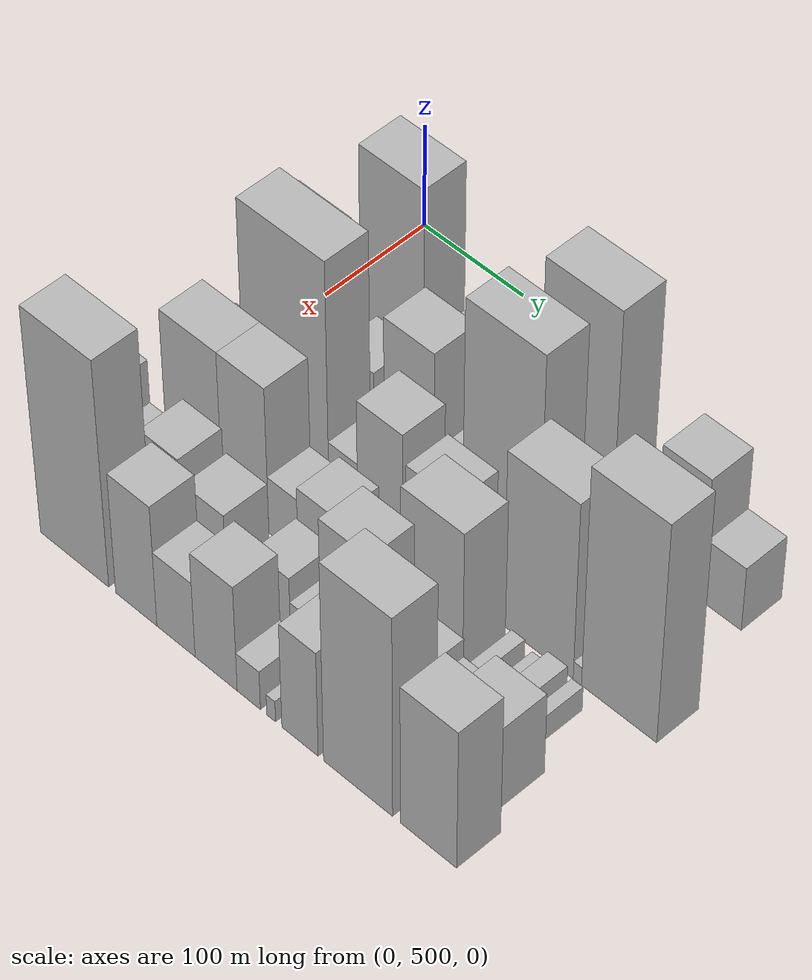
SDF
<sdf version="1.6">
 <world name="default">
  <model name="building_40">
   <static>1</static>
   <pose>100.0000 539.4473 0 0.000000 0.000000 0.000000</pose>
   <link name="link">
    <pose>0 0 25.50 0 0 0</pose>
    <collision name="collision"><geometry><box><size>40.0000 26.0697 51.0000</size></box></geometry></collision>
    <visual name="visual">
     <cast_shadows>0</cast_shadows>
     <geometry><box><size>40.0000 26.0697 51.0000</size></box></geometry>
     <material>
      <script>
       <uri>model://HANNAS_wall/materials/scripts</uri>
       <uri>model://HANNAS_wall/materials/textures</uri>
       <name>vrc/HANNAS_wall</name>
      </script>
     </material>
    </visual>
   </link>
  </model>
  <model name="building_41">
   <static>1</static>
   <pose>100.0000 587.9083 0 0.000000 0.000000 0.000000</pose>
   <link name="link">
    <pose>0 0 100.50 0 0 0</pose>
    <collision name="collision"><geometry><box><size>40.0000 62.8523 201.0000</size></box></geometry></collision>
    <visual name="visual">
     <cast_shadows>0</cast_shadows>
     <geometry><box><size>40.0000 62.8523 201.0000</size></box></geometry>
     <material>
      <script>
       <uri>model://HANNAS_wall/materials/scripts</uri>
       <uri>model://HANNAS_wall/materials/textures</uri>
       <name>vrc/HANNAS_wall</name>
      </script>
     </material>
    </visual>
   </link>
  </model>
  <model name="building_42">
   <static>1</static>
   <pose>100.0000 635.7415 0 0.000000 0.000000 0.000000</pose>
   <link name="link">
    <pose>0 0 28.50 0 0 0</pose>
    <collision name="collision"><geometry><box><size>40.0000 32.8142 57.0000</size></box></geometry></collision>
    <visual name="visual">
     <cast_shadows>0</cast_shadows>
     <geometry><box><size>40.0000 32.8142 57.0000</size></box></geometry>
     <material>
      <script>
       <uri>model://HANNAS_wall/materials/scripts</uri>
       <uri>model://HANNAS_wall/materials/textures</uri>
       <name>vrc/HANNAS_wall</name>
      </script>
     </material>
    </visual>
   </link>
  </model>
  <model name="building_43">
   <static>1</static>
   <pose>100.0000 674.3793 0 0.000000 0.000000 0.000000</pose>
   <link name="link">
    <pose>0 0 24.00 0 0 0</pose>
    <collision name="collision"><geometry><box><size>40.0000 24.4614 48.0000</size></box></geometry></collision>
    <visual name="visual">
     <cast_shadows>0</cast_shadows>
     <geometry><box><size>40.0000 24.4614 48.0000</size></box></geometry>
     <material>
      <script>
       <uri>model://HANNAS_wall/materials/scripts</uri>
       <uri>model://HANNAS_wall/materials/textures</uri>
       <name>vrc/HANNAS_wall</name>
      </script>
     </material>
    </visual>
   </link>
  </model>
  <model name="building_44">
   <static>1</static>
   <pose>100.0000 709.1894 0 0.000000 0.000000 0.000000</pose>
   <link name="link">
    <pose>0 0 64.50 0 0 0</pose>
    <collision name="collision"><geometry><box><size>40.0000 45.1586 129.0000</size></box></geometry></collision>
    <visual name="visual">
     <cast_shadows>0</cast_shadows>
     <geometry><box><size>40.0000 45.1586 129.0000</size></box></geometry>
     <material>
      <script>
       <uri>model://HANNAS_wall/materials/scripts</uri>
       <uri>model://HANNAS_wall/materials/textures</uri>
       <name>vrc/HANNAS_wall</name>
      </script>
     </material>
    </visual>
   </link>
  </model>
  <model name="building_45">
   <static>1</static>
   <pose>100.0000 766.7469 0 0.000000 0.000000 0.000000</pose>
   <link name="link">
    <pose>0 0 109.50 0 0 0</pose>
    <collision name="collision"><geometry><box><size>40.0000 69.9564 219.0000</size></box></geometry></collision>
    <visual name="visual">
     <cast_shadows>0</cast_shadows>
     <geometry><box><size>40.0000 69.9564 219.0000</size></box></geometry>
     <material>
      <script>
       <uri>model://HANNAS_wall/materials/scripts</uri>
       <uri>model://HANNAS_wall/materials/textures</uri>
       <name>vrc/HANNAS_wall</name>
      </script>
     </material>
    </visual>
   </link>
  </model>
  <model name="building_46">
   <static>1</static>
   <pose>100.0000 806.9634 0 0.000000 0.000000 0.000000</pose>
   <link name="link">
    <pose>0 0 10.50 0 0 0</pose>
    <collision name="collision"><geometry><box><size>40.0000 10.4767 21.0000</size></box></geometry></collision>
    <visual name="visual">
     <cast_shadows>0</cast_shadows>
     <geometry><box><size>40.0000 10.4767 21.0000</size></box></geometry>
     <material>
      <script>
       <uri>model://HANNAS_wall/materials/scripts</uri>
       <uri>model://HANNAS_wall/materials/textures</uri>
       <name>vrc/HANNAS_wall</name>
      </script>
     </material>
    </visual>
   </link>
  </model>
  <model name="building_47">
   <static>1</static>
   <pose>100.0000 825.6663 0 0.000000 0.000000 0.000000</pose>
   <link name="link">
    <pose>0 0 16.50 0 0 0</pose>
    <collision name="collision"><geometry><box><size>40.0000 16.9291 33.0000</size></box></geometry></collision>
    <visual name="visual">
     <cast_shadows>0</cast_shadows>
     <geometry><box><size>40.0000 16.9291 33.0000</size></box></geometry>
     <material>
      <script>
       <uri>model://HANNAS_wall/materials/scripts</uri>
       <uri>model://HANNAS_wall/materials/textures</uri>
       <name>vrc/HANNAS_wall</name>
      </script>
     </material>
    </visual>
   </link>
  </model>
  <model name="building_48">
   <static>1</static>
   <pose>100.0000 863.9325 0 0.000000 0.000000 0.000000</pose>
   <link name="link">
    <pose>0 0 61.50 0 0 0</pose>
    <collision name="collision"><geometry><box><size>40.0000 43.6032 123.0000</size></box></geometry></collision>
    <visual name="visual">
     <cast_shadows>0</cast_shadows>
     <geometry><box><size>40.0000 43.6032 123.0000</size></box></geometry>
     <material>
      <script>
       <uri>model://HANNAS_wall/materials/scripts</uri>
       <uri>model://HANNAS_wall/materials/textures</uri>
       <name>vrc/HANNAS_wall</name>
      </script>
     </material>
    </visual>
   </link>
  </model>
  <model name="building_49">
   <static>1</static>
   <pose>100.0000 903.2108 0 0.000000 0.000000 0.000000</pose>
   <link name="link">
    <pose>0 0 31.50 0 0 0</pose>
    <collision name="collision"><geometry><box><size>40.0000 34.9535 63.0000</size></box></geometry></collision>
    <visual name="visual">
     <cast_shadows>0</cast_shadows>
     <geometry><box><size>40.0000 34.9535 63.0000</size></box></geometry>
     <material>
      <script>
       <uri>model://HANNAS_wall/materials/scripts</uri>
       <uri>model://HANNAS_wall/materials/textures</uri>
       <name>vrc/HANNAS_wall</name>
      </script>
     </material>
    </visual>
   </link>
  </model>
  <model name="building_93">
   <static>1</static>
   <pose>155.0000 538.5854 0 0.000000 0.000000 0.000000</pose>
   <link name="link">
    <pose>0 0 73.50 0 0 0</pose>
    <collision name="collision"><geometry><box><size>40.0000 51.8545 147.0000</size></box></geometry></collision>
    <visual name="visual">
     <cast_shadows>0</cast_shadows>
     <geometry><box><size>40.0000 51.8545 147.0000</size></box></geometry>
     <material>
      <script>
       <uri>model://HANNAS_wall/materials/scripts</uri>
       <uri>model://HANNAS_wall/materials/textures</uri>
       <name>vrc/HANNAS_wall</name>
      </script>
     </material>
    </visual>
   </link>
  </model>
  <model name="building_94">
   <static>1</static>
   <pose>155.0000 580.1329 0 0.000000 0.000000 0.000000</pose>
   <link name="link">
    <pose>0 0 16.50 0 0 0</pose>
    <collision name="collision"><geometry><box><size>40.0000 17.2406 33.0000</size></box></geometry></collision>
    <visual name="visual">
     <cast_shadows>0</cast_shadows>
     <geometry><box><size>40.0000 17.2406 33.0000</size></box></geometry>
     <material>
      <script>
       <uri>model://HANNAS_wall/materials/scripts</uri>
       <uri>model://HANNAS_wall/materials/textures</uri>
       <name>vrc/HANNAS_wall</name>
      </script>
     </material>
    </visual>
   </link>
  </model>
  <model name="building_95">
   <static>1</static>
   <pose>155.0000 607.4577 0 0.000000 0.000000 0.000000</pose>
   <link name="link">
    <pose>0 0 34.50 0 0 0</pose>
    <collision name="collision"><geometry><box><size>40.0000 37.4090 69.0000</size></box></geometry></collision>
    <visual name="visual">
     <cast_shadows>0</cast_shadows>
     <geometry><box><size>40.0000 37.4090 69.0000</size></box></geometry>
     <material>
      <script>
       <uri>model://HANNAS_wall/materials/scripts</uri>
       <uri>model://HANNAS_wall/materials/textures</uri>
       <name>vrc/HANNAS_wall</name>
      </script>
     </material>
    </visual>
   </link>
  </model>
  <model name="building_96">
   <static>1</static>
   <pose>155.0000 660.4291 0 0.000000 0.000000 0.000000</pose>
   <link name="link">
    <pose>0 0 66.00 0 0 0</pose>
    <collision name="collision"><geometry><box><size>40.0000 48.5338 132.0000</size></box></geometry></collision>
    <visual name="visual">
     <cast_shadows>0</cast_shadows>
     <geometry><box><size>40.0000 48.5338 132.0000</size></box></geometry>
     <material>
      <script>
       <uri>model://HANNAS_wall/materials/scripts</uri>
       <uri>model://HANNAS_wall/materials/textures</uri>
       <name>vrc/HANNAS_wall</name>
      </script>
     </material>
    </visual>
   </link>
  </model>
  <model name="building_97">
   <static>1</static>
   <pose>155.0000 694.7762 0 0.000000 0.000000 0.000000</pose>
   <link name="link">
    <pose>0 0 18.00 0 0 0</pose>
    <collision name="collision"><geometry><box><size>40.0000 20.1604 36.0000</size></box></geometry></collision>
    <visual name="visual">
     <cast_shadows>0</cast_shadows>
     <geometry><box><size>40.0000 20.1604 36.0000</size></box></geometry>
     <material>
      <script>
       <uri>model://HANNAS_wall/materials/scripts</uri>
       <uri>model://HANNAS_wall/materials/textures</uri>
       <name>vrc/HANNAS_wall</name>
      </script>
     </material>
    </visual>
   </link>
  </model>
  <model name="building_98">
   <static>1</static>
   <pose>155.0000 749.5953 0 0.000000 0.000000 0.000000</pose>
   <link name="link">
    <pose>0 0 103.50 0 0 0</pose>
    <collision name="collision"><geometry><box><size>40.0000 73.4780 207.0000</size></box></geometry></collision>
    <visual name="visual">
     <cast_shadows>0</cast_shadows>
     <geometry><box><size>40.0000 73.4780 207.0000</size></box></geometry>
     <material>
      <script>
       <uri>model://HANNAS_wall/materials/scripts</uri>
       <uri>model://HANNAS_wall/materials/textures</uri>
       <name>vrc/HANNAS_wall</name>
      </script>
     </material>
    </visual>
   </link>
  </model>
  <model name="building_99">
   <static>1</static>
   <pose>155.0000 808.7699 0 0.000000 0.000000 0.000000</pose>
   <link name="link">
    <pose>0 0 37.50 0 0 0</pose>
    <collision name="collision"><geometry><box><size>40.0000 44.8712 75.0000</size></box></geometry></collision>
    <visual name="visual">
     <cast_shadows>0</cast_shadows>
     <geometry><box><size>40.0000 44.8712 75.0000</size></box></geometry>
     <material>
      <script>
       <uri>model://HANNAS_wall/materials/scripts</uri>
       <uri>model://HANNAS_wall/materials/textures</uri>
       <name>vrc/HANNAS_wall</name>
      </script>
     </material>
    </visual>
   </link>
  </model>
  <model name="building_100">
   <static>1</static>
   <pose>155.0000 847.4968 0 0.000000 0.000000 0.000000</pose>
   <link name="link">
    <pose>0 0 31.50 0 0 0</pose>
    <collision name="collision"><geometry><box><size>40.0000 32.5827 63.0000</size></box></geometry></collision>
    <visual name="visual">
     <cast_shadows>0</cast_shadows>
     <geometry><box><size>40.0000 32.5827 63.0000</size></box></geometry>
     <material>
      <script>
       <uri>model://HANNAS_wall/materials/scripts</uri>
       <uri>model://HANNAS_wall/materials/textures</uri>
       <name>vrc/HANNAS_wall</name>
      </script>
     </material>
    </visual>
   </link>
  </model>
  <model name="building_101">
   <static>1</static>
   <pose>155.0000 881.0749 0 0.000000 0.000000 0.000000</pose>
   <link name="link">
    <pose>0 0 31.50 0 0 0</pose>
    <collision name="collision"><geometry><box><size>40.0000 34.5735 63.0000</size></box></geometry></collision>
    <visual name="visual">
     <cast_shadows>0</cast_shadows>
     <geometry><box><size>40.0000 34.5735 63.0000</size></box></geometry>
     <material>
      <script>
       <uri>model://HANNAS_wall/materials/scripts</uri>
       <uri>model://HANNAS_wall/materials/textures</uri>
       <name>vrc/HANNAS_wall</name>
      </script>
     </material>
    </visual>
   </link>
  </model>
  <model name="building_148">
   <static>1</static>
   <pose>210.0000 520.5833 0 0.000000 0.000000 0.000000</pose>
   <link name="link">
    <pose>0 0 30.00 0 0 0</pose>
    <collision name="collision"><geometry><box><size>40.0000 32.2908 60.0000</size></box></geometry></collision>
    <visual name="visual">
     <cast_shadows>0</cast_shadows>
     <geometry><box><size>40.0000 32.2908 60.0000</size></box></geometry>
     <material>
      <script>
       <uri>model://HANNAS_wall/materials/scripts</uri>
       <uri>model://HANNAS_wall/materials/textures</uri>
       <name>vrc/HANNAS_wall</name>
      </script>
     </material>
    </visual>
   </link>
  </model>
  <model name="building_149">
   <static>1</static>
   <pose>210.0000 542.2951 0 0.000000 0.000000 0.000000</pose>
   <link name="link">
    <pose>0 0 13.50 0 0 0</pose>
    <collision name="collision"><geometry><box><size>40.0000 11.1329 27.0000</size></box></geometry></collision>
    <visual name="visual">
     <cast_shadows>0</cast_shadows>
     <geometry><box><size>40.0000 11.1329 27.0000</size></box></geometry>
     <material>
      <script>
       <uri>model://HANNAS_wall/materials/scripts</uri>
       <uri>model://HANNAS_wall/materials/textures</uri>
       <name>vrc/HANNAS_wall</name>
      </script>
     </material>
    </visual>
   </link>
  </model>
  <model name="building_150">
   <static>1</static>
   <pose>210.0000 595.9056 0 0.000000 0.000000 0.000000</pose>
   <link name="link">
    <pose>0 0 112.50 0 0 0</pose>
    <collision name="collision"><geometry><box><size>40.0000 84.0880 225.0000</size></box></geometry></collision>
    <visual name="visual">
     <cast_shadows>0</cast_shadows>
     <geometry><box><size>40.0000 84.0880 225.0000</size></box></geometry>
     <material>
      <script>
       <uri>model://HANNAS_wall/materials/scripts</uri>
       <uri>model://HANNAS_wall/materials/textures</uri>
       <name>vrc/HANNAS_wall</name>
      </script>
     </material>
    </visual>
   </link>
  </model>
  <model name="building_151">
   <static>1</static>
   <pose>210.0000 652.1038 0 0.000000 0.000000 0.000000</pose>
   <link name="link">
    <pose>0 0 25.50 0 0 0</pose>
    <collision name="collision"><geometry><box><size>40.0000 28.3084 51.0000</size></box></geometry></collision>
    <visual name="visual">
     <cast_shadows>0</cast_shadows>
     <geometry><box><size>40.0000 28.3084 51.0000</size></box></geometry>
     <material>
      <script>
       <uri>model://HANNAS_wall/materials/scripts</uri>
       <uri>model://HANNAS_wall/materials/textures</uri>
       <name>vrc/HANNAS_wall</name>
      </script>
     </material>
    </visual>
   </link>
  </model>
  <model name="building_152">
   <static>1</static>
   <pose>210.0000 688.2054 0 0.000000 0.000000 0.000000</pose>
   <link name="link">
    <pose>0 0 57.00 0 0 0</pose>
    <collision name="collision"><geometry><box><size>40.0000 43.8949 114.0000</size></box></geometry></collision>
    <visual name="visual">
     <cast_shadows>0</cast_shadows>
     <geometry><box><size>40.0000 43.8949 114.0000</size></box></geometry>
     <material>
      <script>
       <uri>model://HANNAS_wall/materials/scripts</uri>
       <uri>model://HANNAS_wall/materials/textures</uri>
       <name>vrc/HANNAS_wall</name>
      </script>
     </material>
    </visual>
   </link>
  </model>
  <model name="building_153">
   <static>1</static>
   <pose>210.0000 736.5935 0 0.000000 0.000000 0.000000</pose>
   <link name="link">
    <pose>0 0 43.50 0 0 0</pose>
    <collision name="collision"><geometry><box><size>40.0000 46.8813 87.0000</size></box></geometry></collision>
    <visual name="visual">
     <cast_shadows>0</cast_shadows>
     <geometry><box><size>40.0000 46.8813 87.0000</size></box></geometry>
     <material>
      <script>
       <uri>model://HANNAS_wall/materials/scripts</uri>
       <uri>model://HANNAS_wall/materials/textures</uri>
       <name>vrc/HANNAS_wall</name>
      </script>
     </material>
    </visual>
   </link>
  </model>
  <model name="building_154">
   <static>1</static>
   <pose>210.0000 767.6659 0 0.000000 0.000000 0.000000</pose>
   <link name="link">
    <pose>0 0 15.00 0 0 0</pose>
    <collision name="collision"><geometry><box><size>40.0000 15.2633 30.0000</size></box></geometry></collision>
    <visual name="visual">
     <cast_shadows>0</cast_shadows>
     <geometry><box><size>40.0000 15.2633 30.0000</size></box></geometry>
     <material>
      <script>
       <uri>model://HANNAS_wall/materials/scripts</uri>
       <uri>model://HANNAS_wall/materials/textures</uri>
       <name>vrc/HANNAS_wall</name>
      </script>
     </material>
    </visual>
   </link>
  </model>
  <model name="building_155">
   <static>1</static>
   <pose>210.0000 787.2760 0 0.000000 0.000000 0.000000</pose>
   <link name="link">
    <pose>0 0 22.50 0 0 0</pose>
    <collision name="collision"><geometry><box><size>40.0000 23.9570 45.0000</size></box></geometry></collision>
    <visual name="visual">
     <cast_shadows>0</cast_shadows>
     <geometry><box><size>40.0000 23.9570 45.0000</size></box></geometry>
     <material>
      <script>
       <uri>model://HANNAS_wall/materials/scripts</uri>
       <uri>model://HANNAS_wall/materials/textures</uri>
       <name>vrc/HANNAS_wall</name>
      </script>
     </material>
    </visual>
   </link>
  </model>
  <model name="building_156">
   <static>1</static>
   <pose>210.0000 802.5855 0 0.000000 0.000000 0.000000</pose>
   <link name="link">
    <pose>0 0 7.50 0 0 0</pose>
    <collision name="collision"><geometry><box><size>40.0000 6.6619 15.0000</size></box></geometry></collision>
    <visual name="visual">
     <cast_shadows>0</cast_shadows>
     <geometry><box><size>40.0000 6.6619 15.0000</size></box></geometry>
     <material>
      <script>
       <uri>model://HANNAS_wall/materials/scripts</uri>
       <uri>model://HANNAS_wall/materials/textures</uri>
       <name>vrc/HANNAS_wall</name>
      </script>
     </material>
    </visual>
   </link>
  </model>
  <model name="building_157">
   <static>1</static>
   <pose>210.0000 838.2510 0 0.000000 0.000000 0.000000</pose>
   <link name="link">
    <pose>0 0 87.00 0 0 0</pose>
    <collision name="collision"><geometry><box><size>40.0000 64.6691 174.0000</size></box></geometry></collision>
    <visual name="visual">
     <cast_shadows>0</cast_shadows>
     <geometry><box><size>40.0000 64.6691 174.0000</size></box></geometry>
     <material>
      <script>
       <uri>model://HANNAS_wall/materials/scripts</uri>
       <uri>model://HANNAS_wall/materials/textures</uri>
       <name>vrc/HANNAS_wall</name>
      </script>
     </material>
    </visual>
   </link>
  </model>
  <model name="building_158">
   <static>1</static>
   <pose>210.0000 874.3896 0 0.000000 0.000000 0.000000</pose>
   <link name="link">
    <pose>0 0 9.00 0 0 0</pose>
    <collision name="collision"><geometry><box><size>40.0000 7.6081 18.0000</size></box></geometry></collision>
    <visual name="visual">
     <cast_shadows>0</cast_shadows>
     <geometry><box><size>40.0000 7.6081 18.0000</size></box></geometry>
     <material>
      <script>
       <uri>model://HANNAS_wall/materials/scripts</uri>
       <uri>model://HANNAS_wall/materials/textures</uri>
       <name>vrc/HANNAS_wall</name>
      </script>
     </material>
    </visual>
   </link>
  </model>
  <model name="building_159">
   <static>1</static>
   <pose>210.0000 912.2705 0 0.000000 0.000000 0.000000</pose>
   <link name="link">
    <pose>0 0 108.00 0 0 0</pose>
    <collision name="collision"><geometry><box><size>40.0000 68.1538 216.0000</size></box></geometry></collision>
    <visual name="visual">
     <cast_shadows>0</cast_shadows>
     <geometry><box><size>40.0000 68.1538 216.0000</size></box></geometry>
     <material>
      <script>
       <uri>model://HANNAS_wall/materials/scripts</uri>
       <uri>model://HANNAS_wall/materials/textures</uri>
       <name>vrc/HANNAS_wall</name>
      </script>
     </material>
    </visual>
   </link>
  </model>
  <model name="building_199">
   <static>1</static>
   <pose>265.0000 561.7441 0 0.000000 0.000000 0.000000</pose>
   <link name="link">
    <pose>0 0 72.00 0 0 0</pose>
    <collision name="collision"><geometry><box><size>40.0000 56.0996 144.0000</size></box></geometry></collision>
    <visual name="visual">
     <cast_shadows>0</cast_shadows>
     <geometry><box><size>40.0000 56.0996 144.0000</size></box></geometry>
     <material>
      <script>
       <uri>model://HANNAS_wall/materials/scripts</uri>
       <uri>model://HANNAS_wall/materials/textures</uri>
       <name>vrc/HANNAS_wall</name>
      </script>
     </material>
    </visual>
   </link>
  </model>
  <model name="building_200">
   <static>1</static>
   <pose>265.0000 612.9077 0 0.000000 0.000000 0.000000</pose>
   <link name="link">
    <pose>0 0 72.00 0 0 0</pose>
    <collision name="collision"><geometry><box><size>40.0000 46.2276 144.0000</size></box></geometry></collision>
    <visual name="visual">
     <cast_shadows>0</cast_shadows>
     <geometry><box><size>40.0000 46.2276 144.0000</size></box></geometry>
     <material>
      <script>
       <uri>model://HANNAS_wall/materials/scripts</uri>
       <uri>model://HANNAS_wall/materials/textures</uri>
       <name>vrc/HANNAS_wall</name>
      </script>
     </material>
    </visual>
   </link>
  </model>
  <model name="building_201">
   <static>1</static>
   <pose>265.0000 650.3772 0 0.000000 0.000000 0.000000</pose>
   <link name="link">
    <pose>0 0 28.50 0 0 0</pose>
    <collision name="collision"><geometry><box><size>40.0000 28.7114 57.0000</size></box></geometry></collision>
    <visual name="visual">
     <cast_shadows>0</cast_shadows>
     <geometry><box><size>40.0000 28.7114 57.0000</size></box></geometry>
     <material>
      <script>
       <uri>model://HANNAS_wall/materials/scripts</uri>
       <uri>model://HANNAS_wall/materials/textures</uri>
       <name>vrc/HANNAS_wall</name>
      </script>
     </material>
    </visual>
   </link>
  </model>
  <model name="building_202">
   <static>1</static>
   <pose>265.0000 683.8206 0 0.000000 0.000000 0.000000</pose>
   <link name="link">
    <pose>0 0 34.50 0 0 0</pose>
    <collision name="collision"><geometry><box><size>40.0000 38.1755 69.0000</size></box></geometry></collision>
    <visual name="visual">
     <cast_shadows>0</cast_shadows>
     <geometry><box><size>40.0000 38.1755 69.0000</size></box></geometry>
     <material>
      <script>
       <uri>model://HANNAS_wall/materials/scripts</uri>
       <uri>model://HANNAS_wall/materials/textures</uri>
       <name>vrc/HANNAS_wall</name>
      </script>
     </material>
    </visual>
   </link>
  </model>
  <model name="building_203">
   <static>1</static>
   <pose>265.0000 716.7734 0 0.000000 0.000000 0.000000</pose>
   <link name="link">
    <pose>0 0 19.50 0 0 0</pose>
    <collision name="collision"><geometry><box><size>40.0000 21.7302 39.0000</size></box></geometry></collision>
    <visual name="visual">
     <cast_shadows>0</cast_shadows>
     <geometry><box><size>40.0000 21.7302 39.0000</size></box></geometry>
     <material>
      <script>
       <uri>model://HANNAS_wall/materials/scripts</uri>
       <uri>model://HANNAS_wall/materials/textures</uri>
       <name>vrc/HANNAS_wall</name>
      </script>
     </material>
    </visual>
   </link>
  </model>
  <model name="building_204">
   <static>1</static>
   <pose>265.0000 745.8704 0 0.000000 0.000000 0.000000</pose>
   <link name="link">
    <pose>0 0 31.50 0 0 0</pose>
    <collision name="collision"><geometry><box><size>40.0000 36.4638 63.0000</size></box></geometry></collision>
    <visual name="visual">
     <cast_shadows>0</cast_shadows>
     <geometry><box><size>40.0000 36.4638 63.0000</size></box></geometry>
     <material>
      <script>
       <uri>model://HANNAS_wall/materials/scripts</uri>
       <uri>model://HANNAS_wall/materials/textures</uri>
       <name>vrc/HANNAS_wall</name>
      </script>
     </material>
    </visual>
   </link>
  </model>
  <model name="building_205">
   <static>1</static>
   <pose>265.0000 793.0254 0 0.000000 0.000000 0.000000</pose>
   <link name="link">
    <pose>0 0 75.00 0 0 0</pose>
    <collision name="collision"><geometry><box><size>40.0000 57.8461 150.0000</size></box></geometry></collision>
    <visual name="visual">
     <cast_shadows>0</cast_shadows>
     <geometry><box><size>40.0000 57.8461 150.0000</size></box></geometry>
     <material>
      <script>
       <uri>model://HANNAS_wall/materials/scripts</uri>
       <uri>model://HANNAS_wall/materials/textures</uri>
       <name>vrc/HANNAS_wall</name>
      </script>
     </material>
    </visual>
   </link>
  </model>
  <model name="building_206">
   <static>1</static>
   <pose>265.0000 833.9772 0 0.000000 0.000000 0.000000</pose>
   <link name="link">
    <pose>0 0 13.50 0 0 0</pose>
    <collision name="collision"><geometry><box><size>40.0000 12.0575 27.0000</size></box></geometry></collision>
    <visual name="visual">
     <cast_shadows>0</cast_shadows>
     <geometry><box><size>40.0000 12.0575 27.0000</size></box></geometry>
     <material>
      <script>
       <uri>model://HANNAS_wall/materials/scripts</uri>
       <uri>model://HANNAS_wall/materials/textures</uri>
       <name>vrc/HANNAS_wall</name>
      </script>
     </material>
    </visual>
   </link>
  </model>
  <model name="building_207">
   <static>1</static>
   <pose>265.0000 851.9520 0 0.000000 0.000000 0.000000</pose>
   <link name="link">
    <pose>0 0 10.50 0 0 0</pose>
    <collision name="collision"><geometry><box><size>40.0000 9.8922 21.0000</size></box></geometry></collision>
    <visual name="visual">
     <cast_shadows>0</cast_shadows>
     <geometry><box><size>40.0000 9.8922 21.0000</size></box></geometry>
     <material>
      <script>
       <uri>model://HANNAS_wall/materials/scripts</uri>
       <uri>model://HANNAS_wall/materials/textures</uri>
       <name>vrc/HANNAS_wall</name>
      </script>
     </material>
    </visual>
   </link>
  </model>
  <model name="building_208">
   <static>1</static>
   <pose>265.0000 869.8937 0 0.000000 0.000000 0.000000</pose>
   <link name="link">
    <pose>0 0 16.50 0 0 0</pose>
    <collision name="collision"><geometry><box><size>40.0000 17.9912 33.0000</size></box></geometry></collision>
    <visual name="visual">
     <cast_shadows>0</cast_shadows>
     <geometry><box><size>40.0000 17.9912 33.0000</size></box></geometry>
     <material>
      <script>
       <uri>model://HANNAS_wall/materials/scripts</uri>
       <uri>model://HANNAS_wall/materials/textures</uri>
       <name>vrc/HANNAS_wall</name>
      </script>
     </material>
    </visual>
   </link>
  </model>
  <model name="building_209">
   <static>1</static>
   <pose>265.0000 888.0436 0 0.000000 0.000000 0.000000</pose>
   <link name="link">
    <pose>0 0 12.00 0 0 0</pose>
    <collision name="collision"><geometry><box><size>40.0000 10.3086 24.0000</size></box></geometry></collision>
    <visual name="visual">
     <cast_shadows>0</cast_shadows>
     <geometry><box><size>40.0000 10.3086 24.0000</size></box></geometry>
     <material>
      <script>
       <uri>model://HANNAS_wall/materials/scripts</uri>
       <uri>model://HANNAS_wall/materials/textures</uri>
       <name>vrc/HANNAS_wall</name>
      </script>
     </material>
    </visual>
   </link>
  </model>
  <model name="building_251">
   <static>1</static>
   <pose>320.0000 516.1049 0 0.000000 0.000000 0.000000</pose>
   <link name="link">
    <pose>0 0 54.00 0 0 0</pose>
    <collision name="collision"><geometry><box><size>40.0000 40.8188 108.0000</size></box></geometry></collision>
    <visual name="visual">
     <cast_shadows>0</cast_shadows>
     <geometry><box><size>40.0000 40.8188 108.0000</size></box></geometry>
     <material>
      <script>
       <uri>model://HANNAS_wall/materials/scripts</uri>
       <uri>model://HANNAS_wall/materials/textures</uri>
       <name>vrc/HANNAS_wall</name>
      </script>
     </material>
    </visual>
   </link>
  </model>
  <model name="building_252">
   <static>1</static>
   <pose>320.0000 553.8404 0 0.000000 0.000000 0.000000</pose>
   <link name="link">
    <pose>0 0 33.00 0 0 0</pose>
    <collision name="collision"><geometry><box><size>40.0000 34.6521 66.0000</size></box></geometry></collision>
    <visual name="visual">
     <cast_shadows>0</cast_shadows>
     <geometry><box><size>40.0000 34.6521 66.0000</size></box></geometry>
     <material>
      <script>
       <uri>model://HANNAS_wall/materials/scripts</uri>
       <uri>model://HANNAS_wall/materials/textures</uri>
       <name>vrc/HANNAS_wall</name>
      </script>
     </material>
    </visual>
   </link>
  </model>
  <model name="building_253">
   <static>1</static>
   <pose>320.0000 590.1971 0 0.000000 0.000000 0.000000</pose>
   <link name="link">
    <pose>0 0 48.00 0 0 0</pose>
    <collision name="collision"><geometry><box><size>40.0000 38.0614 96.0000</size></box></geometry></collision>
    <visual name="visual">
     <cast_shadows>0</cast_shadows>
     <geometry><box><size>40.0000 38.0614 96.0000</size></box></geometry>
     <material>
      <script>
       <uri>model://HANNAS_wall/materials/scripts</uri>
       <uri>model://HANNAS_wall/materials/textures</uri>
       <name>vrc/HANNAS_wall</name>
      </script>
     </material>
    </visual>
   </link>
  </model>
  <model name="building_254">
   <static>1</static>
   <pose>320.0000 632.9787 0 0.000000 0.000000 0.000000</pose>
   <link name="link">
    <pose>0 0 37.50 0 0 0</pose>
    <collision name="collision"><geometry><box><size>40.0000 39.5017 75.0000</size></box></geometry></collision>
    <visual name="visual">
     <cast_shadows>0</cast_shadows>
     <geometry><box><size>40.0000 39.5017 75.0000</size></box></geometry>
     <material>
      <script>
       <uri>model://HANNAS_wall/materials/scripts</uri>
       <uri>model://HANNAS_wall/materials/textures</uri>
       <name>vrc/HANNAS_wall</name>
      </script>
     </material>
    </visual>
   </link>
  </model>
  <model name="building_255">
   <static>1</static>
   <pose>320.0000 659.6290 0 0.000000 0.000000 0.000000</pose>
   <link name="link">
    <pose>0 0 9.00 0 0 0</pose>
    <collision name="collision"><geometry><box><size>40.0000 7.7990 18.0000</size></box></geometry></collision>
    <visual name="visual">
     <cast_shadows>0</cast_shadows>
     <geometry><box><size>40.0000 7.7990 18.0000</size></box></geometry>
     <material>
      <script>
       <uri>model://HANNAS_wall/materials/scripts</uri>
       <uri>model://HANNAS_wall/materials/textures</uri>
       <name>vrc/HANNAS_wall</name>
      </script>
     </material>
    </visual>
   </link>
  </model>
  <model name="building_256">
   <static>1</static>
   <pose>320.0000 670.8638 0 0.000000 0.000000 0.000000</pose>
   <link name="link">
    <pose>0 0 9.00 0 0 0</pose>
    <collision name="collision"><geometry><box><size>40.0000 8.6707 18.0000</size></box></geometry></collision>
    <visual name="visual">
     <cast_shadows>0</cast_shadows>
     <geometry><box><size>40.0000 8.6707 18.0000</size></box></geometry>
     <material>
      <script>
       <uri>model://HANNAS_wall/materials/scripts</uri>
       <uri>model://HANNAS_wall/materials/textures</uri>
       <name>vrc/HANNAS_wall</name>
      </script>
     </material>
    </visual>
   </link>
  </model>
  <model name="building_257">
   <static>1</static>
   <pose>320.0000 697.6703 0 0.000000 0.000000 0.000000</pose>
   <link name="link">
    <pose>0 0 31.50 0 0 0</pose>
    <collision name="collision"><geometry><box><size>40.0000 34.9422 63.0000</size></box></geometry></collision>
    <visual name="visual">
     <cast_shadows>0</cast_shadows>
     <geometry><box><size>40.0000 34.9422 63.0000</size></box></geometry>
     <material>
      <script>
       <uri>model://HANNAS_wall/materials/scripts</uri>
       <uri>model://HANNAS_wall/materials/textures</uri>
       <name>vrc/HANNAS_wall</name>
      </script>
     </material>
    </visual>
   </link>
  </model>
  <model name="building_258">
   <static>1</static>
   <pose>320.0000 726.4638 0 0.000000 0.000000 0.000000</pose>
   <link name="link">
    <pose>0 0 19.50 0 0 0</pose>
    <collision name="collision"><geometry><box><size>40.0000 22.6447 39.0000</size></box></geometry></collision>
    <visual name="visual">
     <cast_shadows>0</cast_shadows>
     <geometry><box><size>40.0000 22.6447 39.0000</size></box></geometry>
     <material>
      <script>
       <uri>model://HANNAS_wall/materials/scripts</uri>
       <uri>model://HANNAS_wall/materials/textures</uri>
       <name>vrc/HANNAS_wall</name>
      </script>
     </material>
    </visual>
   </link>
  </model>
  <model name="building_259">
   <static>1</static>
   <pose>320.0000 768.2188 0 0.000000 0.000000 0.000000</pose>
   <link name="link">
    <pose>0 0 73.50 0 0 0</pose>
    <collision name="collision"><geometry><box><size>40.0000 46.8655 147.0000</size></box></geometry></collision>
    <visual name="visual">
     <cast_shadows>0</cast_shadows>
     <geometry><box><size>40.0000 46.8655 147.0000</size></box></geometry>
     <material>
      <script>
       <uri>model://HANNAS_wall/materials/scripts</uri>
       <uri>model://HANNAS_wall/materials/textures</uri>
       <name>vrc/HANNAS_wall</name>
      </script>
     </material>
    </visual>
   </link>
  </model>
  <model name="building_260">
   <static>1</static>
   <pose>320.0000 816.0158 0 0.000000 0.000000 0.000000</pose>
   <link name="link">
    <pose>0 0 36.00 0 0 0</pose>
    <collision name="collision"><geometry><box><size>40.0000 42.7284 72.0000</size></box></geometry></collision>
    <visual name="visual">
     <cast_shadows>0</cast_shadows>
     <geometry><box><size>40.0000 42.7284 72.0000</size></box></geometry>
     <material>
      <script>
       <uri>model://HANNAS_wall/materials/scripts</uri>
       <uri>model://HANNAS_wall/materials/textures</uri>
       <name>vrc/HANNAS_wall</name>
      </script>
     </material>
    </visual>
   </link>
  </model>
  <model name="building_261">
   <static>1</static>
   <pose>320.0000 851.8837 0 0.000000 0.000000 0.000000</pose>
   <link name="link">
    <pose>0 0 27.00 0 0 0</pose>
    <collision name="collision"><geometry><box><size>40.0000 29.0074 54.0000</size></box></geometry></collision>
    <visual name="visual">
     <cast_shadows>0</cast_shadows>
     <geometry><box><size>40.0000 29.0074 54.0000</size></box></geometry>
     <material>
      <script>
       <uri>model://HANNAS_wall/materials/scripts</uri>
       <uri>model://HANNAS_wall/materials/textures</uri>
       <name>vrc/HANNAS_wall</name>
      </script>
     </material>
    </visual>
   </link>
  </model>
  <model name="building_262">
   <static>1</static>
   <pose>320.0000 889.1409 0 0.000000 0.000000 0.000000</pose>
   <link name="link">
    <pose>0 0 40.50 0 0 0</pose>
    <collision name="collision"><geometry><box><size>40.0000 45.5071 81.0000</size></box></geometry></collision>
    <visual name="visual">
     <cast_shadows>0</cast_shadows>
     <geometry><box><size>40.0000 45.5071 81.0000</size></box></geometry>
     <material>
      <script>
       <uri>model://HANNAS_wall/materials/scripts</uri>
       <uri>model://HANNAS_wall/materials/textures</uri>
       <name>vrc/HANNAS_wall</name>
      </script>
     </material>
    </visual>
   </link>
  </model>
  <model name="building_306">
   <static>1</static>
   <pose>375.0000 560.5203 0 0.000000 0.000000 0.000000</pose>
   <link name="link">
    <pose>0 0 111.00 0 0 0</pose>
    <collision name="collision"><geometry><box><size>40.0000 69.2647 222.0000</size></box></geometry></collision>
    <visual name="visual">
     <cast_shadows>0</cast_shadows>
     <geometry><box><size>40.0000 69.2647 222.0000</size></box></geometry>
     <material>
      <script>
       <uri>model://HANNAS_wall/materials/scripts</uri>
       <uri>model://HANNAS_wall/materials/textures</uri>
       <name>vrc/HANNAS_wall</name>
      </script>
     </material>
    </visual>
   </link>
  </model>
  <model name="building_307">
   <static>1</static>
   <pose>375.0000 622.7232 0 0.000000 0.000000 0.000000</pose>
   <link name="link">
    <pose>0 0 60.00 0 0 0</pose>
    <collision name="collision"><geometry><box><size>40.0000 41.1410 120.0000</size></box></geometry></collision>
    <visual name="visual">
     <cast_shadows>0</cast_shadows>
     <geometry><box><size>40.0000 41.1410 120.0000</size></box></geometry>
     <material>
      <script>
       <uri>model://HANNAS_wall/materials/scripts</uri>
       <uri>model://HANNAS_wall/materials/textures</uri>
       <name>vrc/HANNAS_wall</name>
      </script>
     </material>
    </visual>
   </link>
  </model>
  <model name="building_308">
   <static>1</static>
   <pose>375.0000 662.0808 0 0.000000 0.000000 0.000000</pose>
   <link name="link">
    <pose>0 0 37.50 0 0 0</pose>
    <collision name="collision"><geometry><box><size>40.0000 37.5743 75.0000</size></box></geometry></collision>
    <visual name="visual">
     <cast_shadows>0</cast_shadows>
     <geometry><box><size>40.0000 37.5743 75.0000</size></box></geometry>
     <material>
      <script>
       <uri>model://HANNAS_wall/materials/scripts</uri>
       <uri>model://HANNAS_wall/materials/textures</uri>
       <name>vrc/HANNAS_wall</name>
      </script>
     </material>
    </visual>
   </link>
  </model>
  <model name="building_309">
   <static>1</static>
   <pose>375.0000 701.2769 0 0.000000 0.000000 0.000000</pose>
   <link name="link">
    <pose>0 0 52.50 0 0 0</pose>
    <collision name="collision"><geometry><box><size>40.0000 40.8179 105.0000</size></box></geometry></collision>
    <visual name="visual">
     <cast_shadows>0</cast_shadows>
     <geometry><box><size>40.0000 40.8179 105.0000</size></box></geometry>
     <material>
      <script>
       <uri>model://HANNAS_wall/materials/scripts</uri>
       <uri>model://HANNAS_wall/materials/textures</uri>
       <name>vrc/HANNAS_wall</name>
      </script>
     </material>
    </visual>
   </link>
  </model>
  <model name="building_310">
   <static>1</static>
   <pose>375.0000 732.8509 0 0.000000 0.000000 0.000000</pose>
   <link name="link">
    <pose>0 0 19.50 0 0 0</pose>
    <collision name="collision"><geometry><box><size>40.0000 22.3301 39.0000</size></box></geometry></collision>
    <visual name="visual">
     <cast_shadows>0</cast_shadows>
     <geometry><box><size>40.0000 22.3301 39.0000</size></box></geometry>
     <material>
      <script>
       <uri>model://HANNAS_wall/materials/scripts</uri>
       <uri>model://HANNAS_wall/materials/textures</uri>
       <name>vrc/HANNAS_wall</name>
      </script>
     </material>
    </visual>
   </link>
  </model>
  <model name="building_311">
   <static>1</static>
   <pose>375.0000 754.2434 0 0.000000 0.000000 0.000000</pose>
   <link name="link">
    <pose>0 0 10.50 0 0 0</pose>
    <collision name="collision"><geometry><box><size>40.0000 8.4549 21.0000</size></box></geometry></collision>
    <visual name="visual">
     <cast_shadows>0</cast_shadows>
     <geometry><box><size>40.0000 8.4549 21.0000</size></box></geometry>
     <material>
      <script>
       <uri>model://HANNAS_wall/materials/scripts</uri>
       <uri>model://HANNAS_wall/materials/textures</uri>
       <name>vrc/HANNAS_wall</name>
      </script>
     </material>
    </visual>
   </link>
  </model>
  <model name="building_312">
   <static>1</static>
   <pose>375.0000 781.6376 0 0.000000 0.000000 0.000000</pose>
   <link name="link">
    <pose>0 0 52.50 0 0 0</pose>
    <collision name="collision"><geometry><box><size>40.0000 34.3335 105.0000</size></box></geometry></collision>
    <visual name="visual">
     <cast_shadows>0</cast_shadows>
     <geometry><box><size>40.0000 34.3335 105.0000</size></box></geometry>
     <material>
      <script>
       <uri>model://HANNAS_wall/materials/scripts</uri>
       <uri>model://HANNAS_wall/materials/textures</uri>
       <name>vrc/HANNAS_wall</name>
      </script>
     </material>
    </visual>
   </link>
  </model>
  <model name="building_313">
   <static>1</static>
   <pose>375.0000 835.8683 0 0.000000 0.000000 0.000000</pose>
   <link name="link">
    <pose>0 0 99.00 0 0 0</pose>
    <collision name="collision"><geometry><box><size>40.0000 64.1280 198.0000</size></box></geometry></collision>
    <visual name="visual">
     <cast_shadows>0</cast_shadows>
     <geometry><box><size>40.0000 64.1280 198.0000</size></box></geometry>
     <material>
      <script>
       <uri>model://HANNAS_wall/materials/scripts</uri>
       <uri>model://HANNAS_wall/materials/textures</uri>
       <name>vrc/HANNAS_wall</name>
      </script>
     </material>
    </visual>
   </link>
  </model>
  <model name="building_314">
   <static>1</static>
   <pose>375.0000 900.5321 0 0.000000 0.000000 0.000000</pose>
   <link name="link">
    <pose>0 0 69.00 0 0 0</pose>
    <collision name="collision"><geometry><box><size>40.0000 51.1996 138.0000</size></box></geometry></collision>
    <visual name="visual">
     <cast_shadows>0</cast_shadows>
     <geometry><box><size>40.0000 51.1996 138.0000</size></box></geometry>
     <material>
      <script>
       <uri>model://HANNAS_wall/materials/scripts</uri>
       <uri>model://HANNAS_wall/materials/textures</uri>
       <name>vrc/HANNAS_wall</name>
      </script>
     </material>
    </visual>
   </link>
  </model>
 </world>
</sdf>
